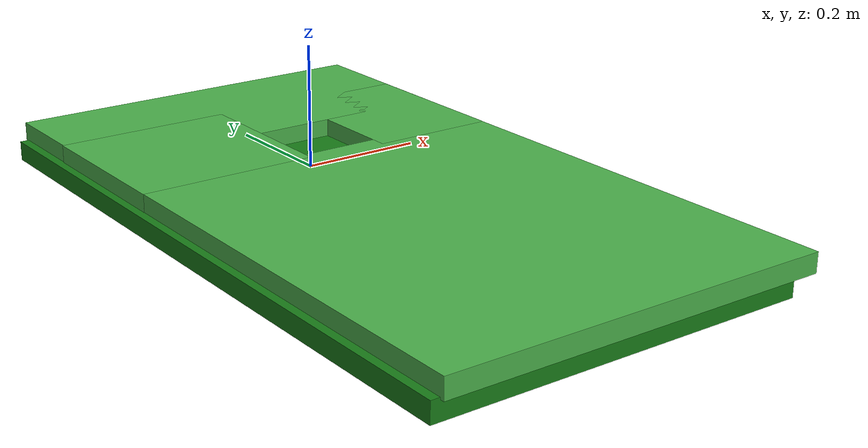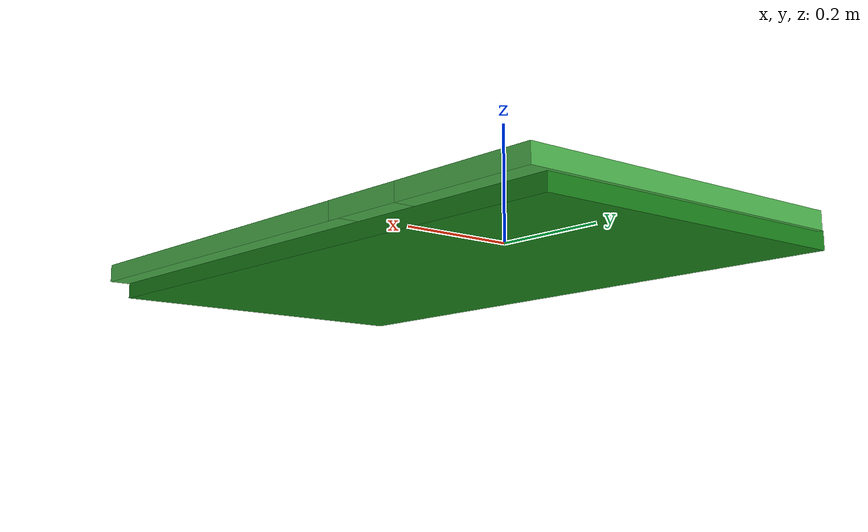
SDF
<?xml version='1.0'?>
<sdf version='1.6'>
  <model name='object-golf-1'>
    <pose>0 0 0.02 0 0 0</pose>
    <link name='link_0'>
      <inertial>
        <mass>0.0146219</mass>
        <inertia>
          <ixx>0.00065425</ixx>
          <ixy>0</ixy>
          <ixz>0</ixz>
          <iyy>0.00048388</iyy>
          <iyz>0</iyz>
          <izz>0.00113566</izz>
        </inertia>
        <pose frame=''>0 0 0 0 -0 0</pose>
      </inertial>
      <pose frame=''>-0.009691 -0.401911 0 0 -0 0</pose>
      <gravity>1</gravity>
      <self_collide>0</self_collide>
      <kinematic>0</kinematic>
      <enable_wind>0</enable_wind>
      <visual name='visual'>
        <pose frame=''>0 0 0 0 -0 0</pose>
        <geometry>
          <box>
            <size>0.629367 0.732069 0.031765</size>
          </box>
        </geometry>
        <material>
          <lighting>1</lighting>
          <script>
            <uri>file://media/materials/scripts/gazebo.material</uri>
            <name>Gazebo/Grey</name>
          </script>
          <shader type='pixel'>
            <normal_map>__default__</normal_map>
          </shader>
          <ambient>0.3 0.7 0.3 1</ambient>
          <diffuse>0.7 0.7 0.7 1</diffuse>
          <specular>0.01 0.01 0.01 1</specular>
          <emissive>0 0 0 1</emissive>
        </material>
        <transparency>0</transparency>
        <cast_shadows>1</cast_shadows>
      </visual>
      <collision name='collision'>
        <laser_retro>0</laser_retro>
        <max_contacts>10</max_contacts>
        <pose frame=''>0 0 0 0 -0 0</pose>
        <geometry>
          <box>
            <size>0.629367 0.732069 0.031765</size>
          </box>
        </geometry>
        <surface>
          <friction>
            <ode>
              <mu>1</mu>
              <mu2>1</mu2>
              <fdir1>0 0 0</fdir1>
              <slip1>0</slip1>
              <slip2>0</slip2>
            </ode>
            <torsional>
              <coefficient>1</coefficient>
              <patch_radius>0</patch_radius>
              <surface_radius>0</surface_radius>
              <use_patch_radius>1</use_patch_radius>
              <ode>
                <slip>0</slip>
              </ode>
            </torsional>
          </friction>
          <bounce>
            <restitution_coefficient>0</restitution_coefficient>
            <threshold>1e+06</threshold>
          </bounce>
          <contact>
            <collide_without_contact>0</collide_without_contact>
            <collide_without_contact_bitmask>1</collide_without_contact_bitmask>
            <collide_bitmask>1</collide_bitmask>
            <ode>
              <soft_cfm>0</soft_cfm>
              <soft_erp>0.2</soft_erp>
              <kp>1e+13</kp>
              <kd>1</kd>
              <max_vel>0.01</max_vel>
              <min_depth>0</min_depth>
            </ode>
            <bullet>
              <split_impulse>1</split_impulse>
              <split_impulse_penetration_threshold>-0.01</split_impulse_penetration_threshold>
              <soft_cfm>0</soft_cfm>
              <soft_erp>0.2</soft_erp>
              <kp>1e+13</kp>
              <kd>1</kd>
            </bullet>
          </contact>
        </surface>
      </collision>
    </link>
    <link name='link_0_clone'>
      <inertial>
        <mass>0.00554007</mass>
        <inertia>
          <ixx>3.598e-05</ixx>
          <ixy>0</ixy>
          <ixz>0</ixz>
          <iyy>0.00018334</iyy>
          <iyz>0</iyz>
          <izz>0.00021839</izz>
        </inertia>
        <pose frame=''>0 0 0 0 -0 0</pose>
      </inertial>
      <pose frame=''>-0.008956 0.23657 0 0 -0 0</pose>
      <gravity>1</gravity>
      <self_collide>0</self_collide>
      <kinematic>0</kinematic>
      <enable_wind>0</enable_wind>
      <visual name='visual'>
        <pose frame=''>0 0 0 0 -0 0</pose>
        <geometry>
          <box>
            <size>0.629367 0.277365 0.031765</size>
          </box>
        </geometry>
        <material>
          <lighting>1</lighting>
          <script>
            <uri>file://media/materials/scripts/gazebo.material</uri>
            <name>Gazebo/Grey</name>
          </script>
          <shader type='pixel'>
            <normal_map>__default__</normal_map>
          </shader>
          <ambient>0.3 0.7 0.3 1</ambient>
          <diffuse>0.7 0.7 0.7 1</diffuse>
          <specular>0.01 0.01 0.01 1</specular>
          <emissive>0 0 0 1</emissive>
        </material>
        <transparency>0</transparency>
        <cast_shadows>1</cast_shadows>
      </visual>
      <collision name='collision'>
        <laser_retro>0</laser_retro>
        <max_contacts>10</max_contacts>
        <pose frame=''>0 0 0 0 -0 0</pose>
        <geometry>
          <box>
            <size>0.629367 0.277365 0.031765</size>
          </box>
        </geometry>
        <surface>
          <friction>
            <ode>
              <mu>1</mu>
              <mu2>1</mu2>
              <fdir1>0 0 0</fdir1>
              <slip1>0</slip1>
              <slip2>0</slip2>
            </ode>
            <torsional>
              <coefficient>1</coefficient>
              <patch_radius>0</patch_radius>
              <surface_radius>0</surface_radius>
              <use_patch_radius>1</use_patch_radius>
              <ode>
                <slip>0</slip>
              </ode>
            </torsional>
          </friction>
          <bounce>
            <restitution_coefficient>0</restitution_coefficient>
            <threshold>1e+06</threshold>
          </bounce>
          <contact>
            <collide_without_contact>0</collide_without_contact>
            <collide_without_contact_bitmask>1</collide_without_contact_bitmask>
            <collide_bitmask>1</collide_bitmask>
            <ode>
              <soft_cfm>0</soft_cfm>
              <soft_erp>0.2</soft_erp>
              <kp>1e+13</kp>
              <kd>1</kd>
              <max_vel>0.01</max_vel>
              <min_depth>0</min_depth>
            </ode>
            <bullet>
              <split_impulse>1</split_impulse>
              <split_impulse_penetration_threshold>-0.01</split_impulse_penetration_threshold>
              <soft_cfm>0</soft_cfm>
              <soft_erp>0.2</soft_erp>
              <kp>1e+13</kp>
              <kd>1</kd>
            </bullet>
          </contact>
        </surface>
      </collision>
    </link>
    <link name='link_0_clone_clone'>
      <inertial>
        <mass>0.00257577</mass>
        <inertia>
          <ixx>1.673e-05</ixx>
          <ixy>0</ixy>
          <ixz>0</ixz>
          <iyy>1.86e-05</iyy>
          <iyz>0</iyz>
          <izz>3.489e-05</izz>
        </inertia>
        <pose frame=''>0 0 0 0 -0 0</pose>
      </inertial>
      <pose frame=''>-0.178548 0.088268 0 0 -0 0</pose>
      <gravity>1</gravity>
      <self_collide>0</self_collide>
      <kinematic>0</kinematic>
      <enable_wind>0</enable_wind>
      <visual name='visual'>
        <pose frame=''>0 0 0 0 -0 0</pose>
        <geometry>
          <box>
            <size>0.292619 0.277365 0.031765</size>
          </box>
        </geometry>
        <material>
          <lighting>1</lighting>
          <script>
            <uri>file://media/materials/scripts/gazebo.material</uri>
            <name>Gazebo/Grey</name>
          </script>
          <shader type='pixel'>
            <normal_map>__default__</normal_map>
          </shader>
          <ambient>0.3 0.7 0.3 1</ambient>
          <diffuse>0.7 0.7 0.7 1</diffuse>
          <specular>0.01 0.01 0.01 1</specular>
          <emissive>0 0 0 1</emissive>
        </material>
        <transparency>0</transparency>
        <cast_shadows>1</cast_shadows>
      </visual>
      <collision name='collision'>
        <laser_retro>0</laser_retro>
        <max_contacts>10</max_contacts>
        <pose frame=''>0 0 0 0 -0 0</pose>
        <geometry>
          <box>
            <size>0.292619 0.277365 0.031765</size>
          </box>
        </geometry>
        <surface>
          <friction>
            <ode>
              <mu>1</mu>
              <mu2>1</mu2>
              <fdir1>0 0 0</fdir1>
              <slip1>0</slip1>
              <slip2>0</slip2>
            </ode>
            <torsional>
              <coefficient>1</coefficient>
              <patch_radius>0</patch_radius>
              <surface_radius>0</surface_radius>
              <use_patch_radius>1</use_patch_radius>
              <ode>
                <slip>0</slip>
              </ode>
            </torsional>
          </friction>
          <bounce>
            <restitution_coefficient>0</restitution_coefficient>
            <threshold>1e+06</threshold>
          </bounce>
          <contact>
            <collide_without_contact>0</collide_without_contact>
            <collide_without_contact_bitmask>1</collide_without_contact_bitmask>
            <collide_bitmask>1</collide_bitmask>
            <ode>
              <soft_cfm>0</soft_cfm>
              <soft_erp>0.2</soft_erp>
              <kp>1e+13</kp>
              <kd>1</kd>
              <max_vel>0.01</max_vel>
              <min_depth>0</min_depth>
            </ode>
            <bullet>
              <split_impulse>1</split_impulse>
              <split_impulse_penetration_threshold>-0.01</split_impulse_penetration_threshold>
              <soft_cfm>0</soft_cfm>
              <soft_erp>0.2</soft_erp>
              <kp>1e+13</kp>
              <kd>1</kd>
            </bullet>
          </contact>
        </surface>
      </collision>
    </link>
    <link name='link_0_clone_clone_clone'>
      <inertial>
        <mass>0.00182334</mass>
        <inertia>
          <ixx>1.184e-05</ixx>
          <ixy>0</ixy>
          <ixz>0</ixz>
          <iyy>6.67e-06</iyy>
          <iyz>0</iyz>
          <izz>1.821e-05</izz>
        </inertia>
        <pose frame=''>0 0 0 0 -0 0</pose>
      </inertial>
      <pose frame=''>0.20197 0.077074 0 0 -0 0</pose>
      <gravity>1</gravity>
      <self_collide>0</self_collide>
      <kinematic>0</kinematic>
      <enable_wind>0</enable_wind>
      <visual name='visual'>
        <pose frame=''>0 0 0 0 -0 0</pose>
        <geometry>
          <box>
            <size>0.207141 0.277365 0.031765</size>
          </box>
        </geometry>
        <material>
          <lighting>1</lighting>
          <script>
            <uri>file://media/materials/scripts/gazebo.material</uri>
            <name>Gazebo/Grey</name>
          </script>
          <shader type='pixel'>
            <normal_map>__default__</normal_map>
          </shader>
          <ambient>0.3 0.7 0.3 1</ambient>
          <diffuse>0.7 0.7 0.7 1</diffuse>
          <specular>0.01 0.01 0.01 1</specular>
          <emissive>0 0 0 1</emissive>
        </material>
        <transparency>0</transparency>
        <cast_shadows>1</cast_shadows>
      </visual>
      <collision name='collision'>
        <laser_retro>0</laser_retro>
        <max_contacts>10</max_contacts>
        <pose frame=''>0 0 0 0 -0 0</pose>
        <geometry>
          <box>
            <size>0.207141 0.277365 0.031765</size>
          </box>
        </geometry>
        <surface>
          <friction>
            <ode>
              <mu>1</mu>
              <mu2>1</mu2>
              <fdir1>0 0 0</fdir1>
              <slip1>0</slip1>
              <slip2>0</slip2>
            </ode>
            <torsional>
              <coefficient>1</coefficient>
              <patch_radius>0</patch_radius>
              <surface_radius>0</surface_radius>
              <use_patch_radius>1</use_patch_radius>
              <ode>
                <slip>0</slip>
              </ode>
            </torsional>
          </friction>
          <bounce>
            <restitution_coefficient>0</restitution_coefficient>
            <threshold>1e+06</threshold>
          </bounce>
          <contact>
            <collide_without_contact>0</collide_without_contact>
            <collide_without_contact_bitmask>1</collide_without_contact_bitmask>
            <collide_bitmask>1</collide_bitmask>
            <ode>
              <soft_cfm>0</soft_cfm>
              <soft_erp>0.2</soft_erp>
              <kp>1e+13</kp>
              <kd>1</kd>
              <max_vel>0.01</max_vel>
              <min_depth>0</min_depth>
            </ode>
            <bullet>
              <split_impulse>1</split_impulse>
              <split_impulse_penetration_threshold>-0.01</split_impulse_penetration_threshold>
              <soft_cfm>0</soft_cfm>
              <soft_erp>0.2</soft_erp>
              <kp>1e+13</kp>
              <kd>1</kd>
            </bullet>
          </contact>
        </surface>
      </collision>
    </link>
    <link name='link_0_clone_clone_clone_clone'>
      <inertial>
        <mass>0.0217493</mass>
        <inertia>
          <ixx>0.00231113</ixx>
          <ixy>0</ixy>
          <ixz>0</ixz>
          <iyy>0.000669994</iyy>
          <iyz>0</iyz>
          <izz>0.00297746</izz>
        </inertia>
        <pose frame=''>0 0 0 0 -0 0</pose>
      </inertial>
      <pose frame=''>-0.03481 -0.197258 -0.028582 0 -0 0</pose>
      <gravity>1</gravity>
      <self_collide>0</self_collide>
      <kinematic>0</kinematic>
      <enable_wind>0</enable_wind>
      <visual name='visual'>
        <pose frame=''>0 0 0 0 -0 0</pose>
        <geometry>
          <box>
            <size>0.607169 1.12878 0.031765</size>
          </box>
        </geometry>
        <material>
          <lighting>1</lighting>
          <script>
            <uri>file://media/materials/scripts/gazebo.material</uri>
            <name>Gazebo/Grey</name>
          </script>
          <shader type='pixel'>
            <normal_map>__default__</normal_map>
          </shader>
          <ambient>0.1 0.4 0.1 1</ambient>
          <diffuse>0.1 0.5 0.1 1</diffuse>
          <specular>0.01 0.01 0.01 1</specular>
          <emissive>0 0 0 1</emissive>
        </material>
        <transparency>0</transparency>
        <cast_shadows>1</cast_shadows>
      </visual>
      <collision name='collision'>
        <laser_retro>0</laser_retro>
        <max_contacts>10</max_contacts>
        <pose frame=''>0 0 0 0 -0 0</pose>
        <geometry>
          <box>
            <size>0.607169 1.12878 0.031765</size>
          </box>
        </geometry>
        <surface>
          <friction>
            <ode>
              <mu>1</mu>
              <mu2>1</mu2>
              <fdir1>0 0 0</fdir1>
              <slip1>0</slip1>
              <slip2>0</slip2>
            </ode>
            <torsional>
              <coefficient>1</coefficient>
              <patch_radius>0</patch_radius>
              <surface_radius>0</surface_radius>
              <use_patch_radius>1</use_patch_radius>
              <ode>
                <slip>0</slip>
              </ode>
            </torsional>
          </friction>
          <bounce>
            <restitution_coefficient>0</restitution_coefficient>
            <threshold>1e+06</threshold>
          </bounce>
          <contact>
            <collide_without_contact>0</collide_without_contact>
            <collide_without_contact_bitmask>1</collide_without_contact_bitmask>
            <collide_bitmask>1</collide_bitmask>
            <ode>
              <soft_cfm>0</soft_cfm>
              <soft_erp>0.2</soft_erp>
              <kp>1e+13</kp>
              <kd>1</kd>
              <max_vel>0.01</max_vel>
              <min_depth>0</min_depth>
            </ode>
            <bullet>
              <split_impulse>1</split_impulse>
              <split_impulse_penetration_threshold>-0.01</split_impulse_penetration_threshold>
              <soft_cfm>0</soft_cfm>
              <soft_erp>0.2</soft_erp>
              <kp>1e+13</kp>
              <kd>1</kd>
            </bullet>
          </contact>
        </surface>
      </collision>
    </link>
    <static>1</static>
    <allow_auto_disable>1</allow_auto_disable>
  </model>
</sdf>
